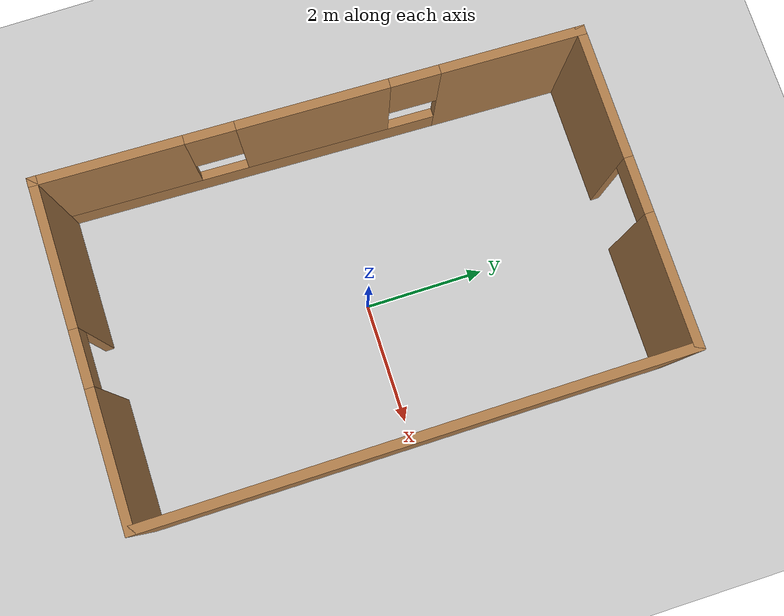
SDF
<sdf version="1.7">
 <world name="default">
  <light name="sun" type="directional">
   <pose>0 0 10 0 -0 0</pose>
   <diffuse>0.8 0.8 0.8 1</diffuse>
   <specular>0.2 0.2 0.2 1</specular>
   <attenuation>
    <range>1000</range>
    <constant>0.9</constant>
    <linear>0.01</linear>
    <quadratic>0.001</quadratic>
   </attenuation>
   <direction>-0.5 0.1 -0.9</direction>
   <spot><inner_angle>0</inner_angle><outer_angle>0</outer_angle><falloff>0</falloff></spot>
  </light>
  <model name="ground_plane">
   <static>1</static>
   <link name="link">
    <collision name="collision">
     <geometry><plane><normal>0 0 1</normal><size>100 100</size></plane></geometry>
     <surface>
      <contact><collide_bitmask>65535</collide_bitmask></contact>
      <friction><ode><mu>100</mu><mu2>50</mu2></ode></friction>
     </surface>
    </collision>
    <visual name="visual">
     <cast_shadows>0</cast_shadows>
     <geometry><plane><normal>0 0 1</normal><size>100 100</size></plane></geometry>
     <material>
      <script><uri>file://media/materials/scripts/gazebo.material</uri><name>Gazebo/Grey</name></script>
     </material>
    </visual>
   </link>
  </model>
  <gravity>0 0 -9.8</gravity>
  <magnetic_field>6e-06 2.3e-05 -4.2e-05</magnetic_field>
  <atmosphere type="adiabatic"/>
  <physics type="ode">
   <max_step_size>0.001</max_step_size>
   <real_time_factor>1</real_time_factor>
   <real_time_update_rate>1000</real_time_update_rate>
  </physics>
  <scene><ambient>0.4 0.4 0.4 1</ambient><background>0.7 0.7 0.7 1</background><shadows>1</shadows></scene>
  <audio><device>default</device></audio>
  <spherical_coordinates>
   <surface_model>EARTH_WGS84</surface_model>
   <latitude_deg>0</latitude_deg>
   <longitude_deg>0</longitude_deg>
   <elevation>0</elevation>
   <heading_deg>0</heading_deg>
  </spherical_coordinates>
  <model name="Test_World">
   <pose>-0.285794 -0.02638 0 0 -0 0</pose>
   <link name="Wall_0">
    <pose>0.001074 -4.3 0 0 -0 0</pose>
    <visual name="Wall_0_Visual_0">
     <pose>-1.54729 0 1.25 0 -0 0</pose>
     <geometry><box><size>2.40543 0.15 2.5</size></box></geometry>
     <material>
      <script><uri>file://media/materials/scripts/gazebo.material</uri><name>Gazebo/Wood</name></script>
      <ambient>1 1 1 1</ambient>
     </material>
     <meta><layer>0</layer></meta>
    </visual>
    <collision name="Wall_0_Collision_0">
     <geometry><box><size>2.40543 0.15 2.5</size></box></geometry>
     <pose>-1.54729 0 1.25 0 -0 0</pose>
    </collision>
    <visual name="Wall_0_Visual_1">
     <pose>1.65271 0 1.25 0 -0 0</pose>
     <geometry><box><size>2.19457 0.15 2.5</size></box></geometry>
     <material>
      <script><uri>file://media/materials/scripts/gazebo.material</uri><name>Gazebo/Wood</name></script>
      <ambient>1 1 1 1</ambient>
     </material>
     <meta><layer>0</layer></meta>
    </visual>
    <collision name="Wall_0_Collision_1">
     <geometry><box><size>2.19457 0.15 2.5</size></box></geometry>
     <pose>1.65271 0 1.25 0 -0 0</pose>
    </collision>
    <visual name="Wall_0_Visual_2">
     <pose>0.105425 0 2.25 0 -0 0</pose>
     <geometry><box><size>0.9 0.15 0.5</size></box></geometry>
     <material>
      <script><uri>file://media/materials/scripts/gazebo.material</uri><name>Gazebo/Wood</name></script>
      <ambient>1 1 1 1</ambient>
     </material>
     <meta><layer>0</layer></meta>
    </visual>
    <collision name="Wall_0_Collision_2">
     <geometry><box><size>0.9 0.15 0.5</size></box></geometry>
     <pose>0.105425 0 2.25 0 -0 0</pose>
    </collision>
   </link>
   <link name="Wall_1">
    <collision name="Wall_1_Collision">
     <geometry><box><size>8.75 0.15 2.5</size></box></geometry>
     <pose>0 0 1.25 0 -0 0</pose>
    </collision>
    <visual name="Wall_1_Visual">
     <pose>0 0 1.25 0 -0 0</pose>
     <geometry><box><size>8.75 0.15 2.5</size></box></geometry>
     <material>
      <script><uri>file://media/materials/scripts/gazebo.material</uri><name>Gazebo/Wood</name></script>
      <ambient>1 1 1 1</ambient>
     </material>
     <meta><layer>0</layer></meta>
    </visual>
    <pose>2.67607 0 0 0 -0 1.5708</pose>
   </link>
   <link name="Wall_2">
    <pose>0.126074 4.3 0 0 -0 3.14159</pose>
    <visual name="Wall_2_Visual_0">
     <pose>-1.54101 0 1.25 0 -0 0</pose>
     <geometry><box><size>2.16798 0.15 2.5</size></box></geometry>
     <material>
      <script><uri>file://media/materials/scripts/gazebo.material</uri><name>Gazebo/Wood</name></script>
      <ambient>1 1 1 1</ambient>
     </material>
     <meta><layer>0</layer></meta>
    </visual>
    <collision name="Wall_2_Collision_0">
     <geometry><box><size>2.16798 0.15 2.5</size></box></geometry>
     <pose>-1.54101 0 1.25 0 -0 0</pose>
    </collision>
    <visual name="Wall_2_Visual_1">
     <pose>1.53399 0 1.25 0 -0 0</pose>
     <geometry><box><size>2.18202 0.15 2.5</size></box></geometry>
     <material>
      <script><uri>file://media/materials/scripts/gazebo.material</uri><name>Gazebo/Wood</name></script>
      <ambient>1 1 1 1</ambient>
     </material>
     <meta><layer>0</layer></meta>
    </visual>
    <collision name="Wall_2_Collision_1">
     <geometry><box><size>2.18202 0.15 2.5</size></box></geometry>
     <pose>1.53399 0 1.25 0 -0 0</pose>
    </collision>
    <visual name="Wall_2_Visual_2">
     <pose>-0.007025 0 2.25 0 -0 0</pose>
     <geometry><box><size>0.9 0.15 0.5</size></box></geometry>
     <material>
      <script><uri>file://media/materials/scripts/gazebo.material</uri><name>Gazebo/Wood</name></script>
      <ambient>1 1 1 1</ambient>
     </material>
     <meta><layer>0</layer></meta>
    </visual>
    <collision name="Wall_2_Collision_2">
     <geometry><box><size>0.9 0.15 0.5</size></box></geometry>
     <pose>-0.007025 0 2.25 0 -0 0</pose>
    </collision>
   </link>
   <link name="Wall_3">
    <pose>-2.54893 0 0 0 -0 -1.59986</pose>
    <visual name="Wall_3_Visual_0">
     <pose>-3.21475 0 1.25 0 -0 0</pose>
     <geometry><box><size>2.32412 0.15 2.5</size></box></geometry>
     <material>
      <script><uri>file://media/materials/scripts/gazebo.material</uri><name>Gazebo/Wood</name></script>
      <ambient>1 1 1 1</ambient>
     </material>
     <meta><layer>0</layer></meta>
    </visual>
    <collision name="Wall_3_Collision_0">
     <geometry><box><size>2.32412 0.15 2.5</size></box></geometry>
     <pose>-3.21475 0 1.25 0 -0 0</pose>
    </collision>
    <visual name="Wall_3_Visual_1">
     <pose>1.16206 0 0.25 0 -0 0</pose>
     <geometry><box><size>6.42951 0.15 0.5</size></box></geometry>
     <material>
      <script><uri>file://media/materials/scripts/gazebo.material</uri><name>Gazebo/Wood</name></script>
      <ambient>1 1 1 1</ambient>
     </material>
     <meta><layer>0</layer></meta>
    </visual>
    <collision name="Wall_3_Collision_1">
     <geometry><box><size>6.42951 0.15 0.5</size></box></geometry>
     <pose>1.16206 0 0.25 0 -0 0</pose>
    </collision>
    <visual name="Wall_3_Visual_2">
     <pose>-0.040583 0 1.5 0 -0 0</pose>
     <geometry><box><size>2.42422 0.15 2</size></box></geometry>
     <material>
      <script><uri>file://media/materials/scripts/gazebo.material</uri><name>Gazebo/Wood</name></script>
      <ambient>1 1 1 1</ambient>
     </material>
     <meta><layer>0</layer></meta>
    </visual>
    <collision name="Wall_3_Collision_2">
     <geometry><box><size>2.42422 0.15 2</size></box></geometry>
     <pose>-0.040583 0 1.5 0 -0 0</pose>
    </collision>
    <visual name="Wall_3_Visual_3">
     <pose>3.17417 0 1.5 0 -0 0</pose>
     <geometry><box><size>2.40529 0.15 2</size></box></geometry>
     <material>
      <script><uri>file://media/materials/scripts/gazebo.material</uri><name>Gazebo/Wood</name></script>
      <ambient>1 1 1 1</ambient>
     </material>
     <meta><layer>0</layer></meta>
    </visual>
    <collision name="Wall_3_Collision_3">
     <geometry><box><size>2.40529 0.15 2</size></box></geometry>
     <pose>3.17417 0 1.5 0 -0 0</pose>
    </collision>
    <visual name="Wall_3_Visual_4">
     <pose>-1.65269 0 1.9 0 -0 0</pose>
     <geometry><box><size>0.8 0.15 1.2</size></box></geometry>
     <material>
      <script><uri>file://media/materials/scripts/gazebo.material</uri><name>Gazebo/Wood</name></script>
      <ambient>1 1 1 1</ambient>
     </material>
     <meta><layer>0</layer></meta>
    </visual>
    <collision name="Wall_3_Collision_4">
     <geometry><box><size>0.8 0.15 1.2</size></box></geometry>
     <pose>-1.65269 0 1.9 0 -0 0</pose>
    </collision>
    <visual name="Wall_3_Visual_5">
     <pose>1.57153 0 1.9 0 -0 0</pose>
     <geometry><box><size>0.8 0.15 1.2</size></box></geometry>
     <material>
      <script><uri>file://media/materials/scripts/gazebo.material</uri><name>Gazebo/Wood</name></script>
      <ambient>1 1 1 1</ambient>
     </material>
     <meta><layer>0</layer></meta>
    </visual>
    <collision name="Wall_3_Collision_5">
     <geometry><box><size>0.8 0.15 1.2</size></box></geometry>
     <pose>1.57153 0 1.9 0 -0 0</pose>
    </collision>
   </link>
   <static>1</static>
  </model>
 </world>
</sdf>
